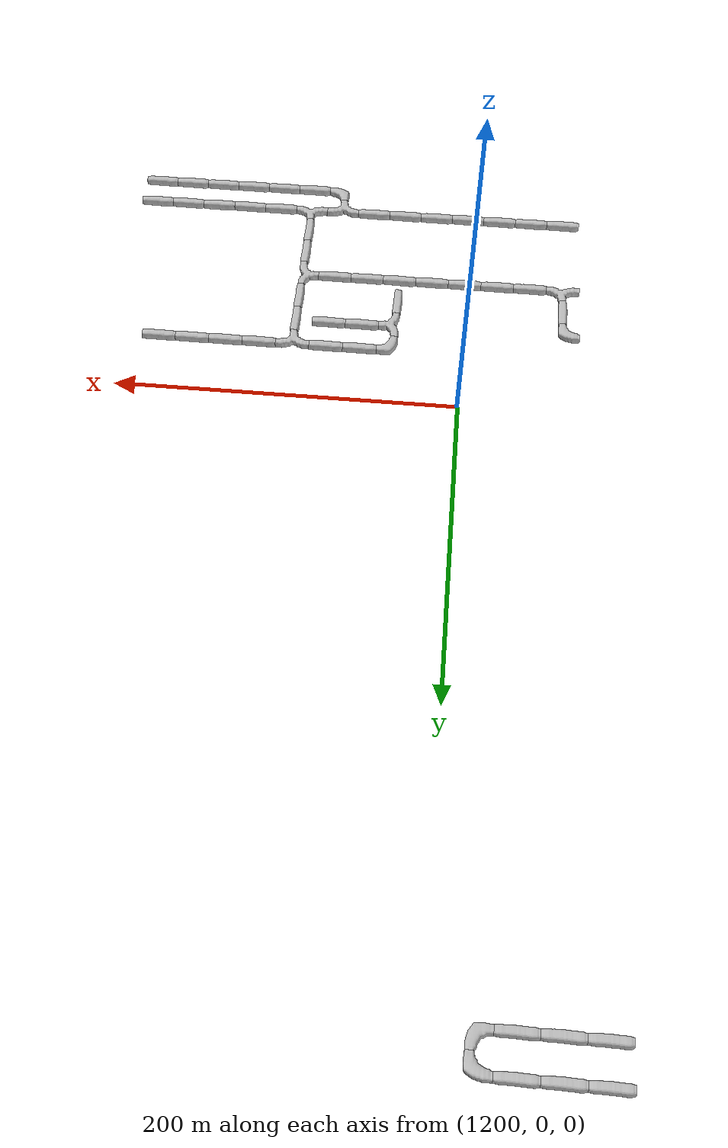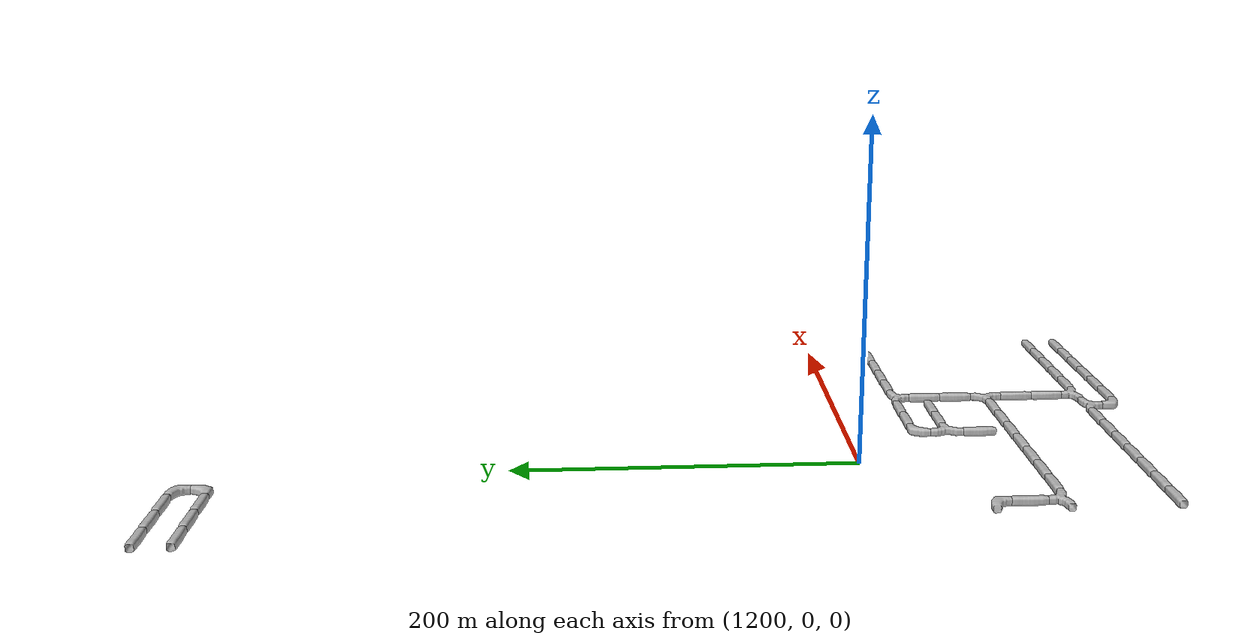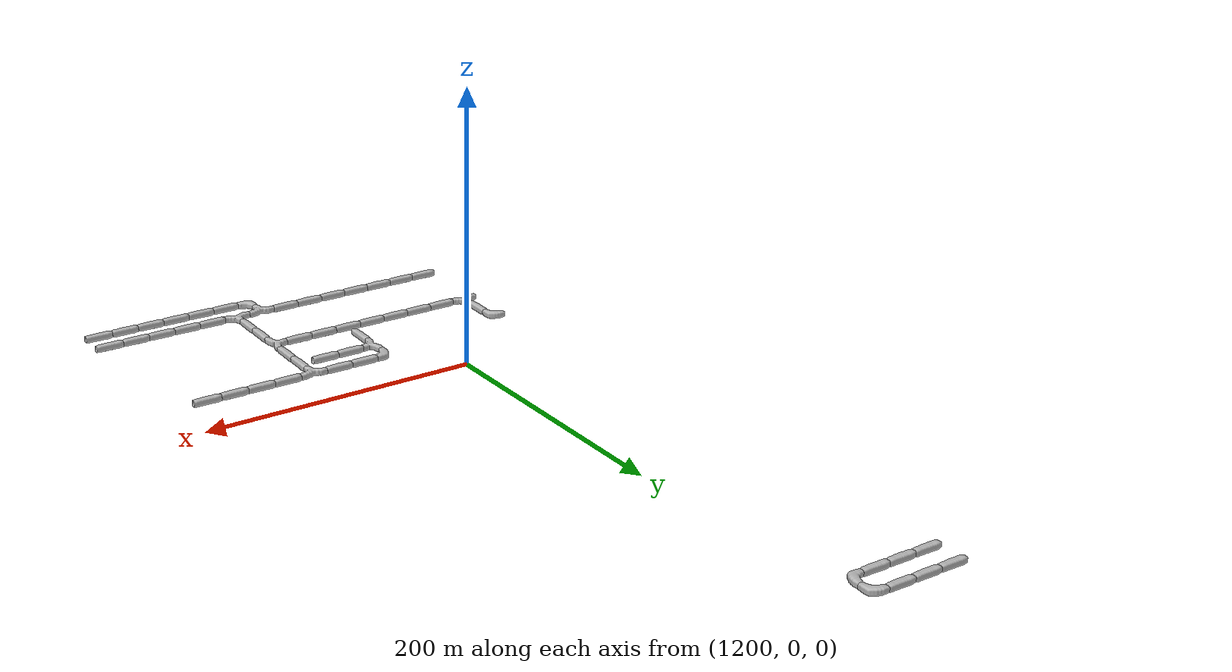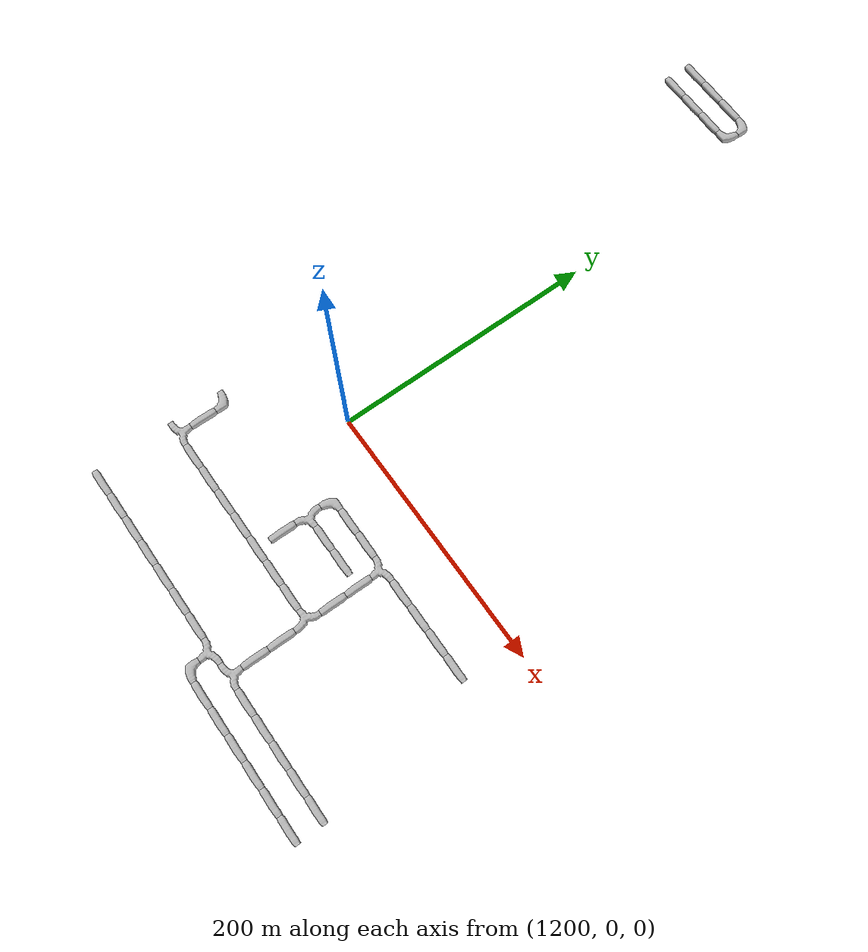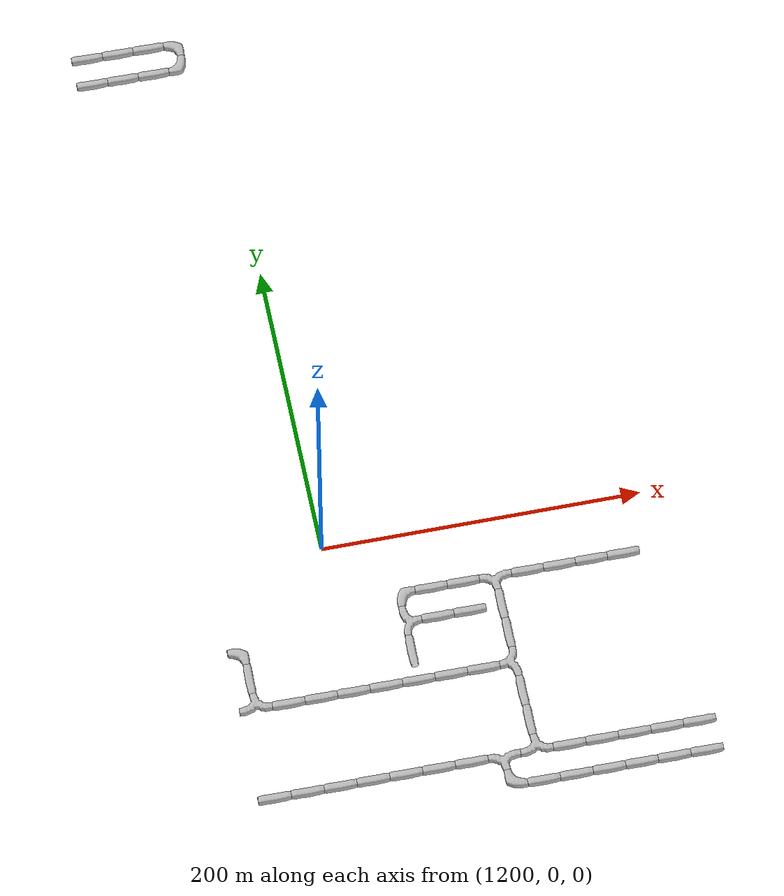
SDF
<sdf version="1.6">
 <world name="cave_32000_8">
  <include>
   <static>true</static>
   <name>cave_56_19</name>
   <pose>1120 380 0 0 0 1.5707963267948966</pose>
   <uri>model://cave_straight_20m</uri>
  </include>
  <include>
   <static>true</static>
   <name>cave_57_19</name>
   <pose>1140 380 0 0 0 1.5707963267948966</pose>
   <uri>model://cave_straight_20m</uri>
  </include>
  <include>
   <static>true</static>
   <name>cave_58_19</name>
   <pose>1160 380 0 0 0 1.5707963267948966</pose>
   <uri>model://cave_straight_20m</uri>
  </include>
  <include>
   <static>true</static>
   <name>cave_59_19</name>
   <pose>1180 380 0 0 0 3.141592653589793</pose>
   <uri>model://cave_L_20m</uri>
  </include>
  <include>
   <static>true</static>
   <name>cave_59_18</name>
   <pose>1180 360 0 0 0 1.5707963267948966</pose>
   <uri>model://cave_L_20m</uri>
  </include>
  <include>
   <static>true</static>
   <name>cave_58_18</name>
   <pose>1160 360 0 0 0 1.5707963267948966</pose>
   <uri>model://cave_straight_20m</uri>
  </include>
  <include>
   <static>true</static>
   <name>cave_57_18</name>
   <pose>1140 360 0 0 0 1.5707963267948966</pose>
   <uri>model://cave_straight_20m</uri>
  </include>
  <include>
   <static>true</static>
   <name>cave_56_18</name>
   <pose>1120 360 0 0 0 1.5707963267948966</pose>
   <uri>model://cave_straight_20m</uri>
  </include>
  <include>
   <static>true</static>
   <name>cave_57_-8</name>
   <pose>1140 -160 0 0 0 1.5707963267948966</pose>
   <uri>model://cave_straight_20m</uri>
  </include>
  <include>
   <static>true</static>
   <name>cave_58_-8</name>
   <pose>1160 -160 0 0 0 1.5707963267948966</pose>
   <uri>model://cave_straight_20m</uri>
  </include>
  <include>
   <static>true</static>
   <name>cave_59_-8</name>
   <pose>1180 -160 0 0 0 1.5707963267948966</pose>
   <uri>model://cave_straight_20m</uri>
  </include>
  <include>
   <static>true</static>
   <name>cave_60_-8</name>
   <pose>1200 -160 0 0 0 1.5707963267948966</pose>
   <uri>model://cave_straight_20m</uri>
  </include>
  <include>
   <static>true</static>
   <name>cave_61_-8</name>
   <pose>1220 -160 0 0 0 1.5707963267948966</pose>
   <uri>model://cave_straight_20m</uri>
  </include>
  <include>
   <static>true</static>
   <name>cave_62_-8</name>
   <pose>1240 -160 0 0 0 1.5707963267948966</pose>
   <uri>model://cave_straight_20m</uri>
  </include>
  <include>
   <static>true</static>
   <name>cave_63_-8</name>
   <pose>1260 -160 0 0 0 1.5707963267948966</pose>
   <uri>model://cave_straight_20m</uri>
  </include>
  <include>
   <static>true</static>
   <name>cave_64_-8</name>
   <pose>1280 -160 0 0 0 3.141592653589793</pose>
   <uri>model://cave_3way_20m</uri>
  </include>
  <include>
   <static>true</static>
   <name>cave_65_-8</name>
   <pose>1300 -160 0 0 0 0.0</pose>
   <uri>model://cave_3way_20m</uri>
  </include>
  <include>
   <static>true</static>
   <name>cave_66_-8</name>
   <pose>1320 -160 0 0 0 1.5707963267948966</pose>
   <uri>model://cave_straight_20m</uri>
  </include>
  <include>
   <static>true</static>
   <name>cave_67_-8</name>
   <pose>1340 -160 0 0 0 1.5707963267948966</pose>
   <uri>model://cave_straight_20m</uri>
  </include>
  <include>
   <static>true</static>
   <name>cave_68_-8</name>
   <pose>1360 -160 0 0 0 1.5707963267948966</pose>
   <uri>model://cave_straight_20m</uri>
  </include>
  <include>
   <static>true</static>
   <name>cave_69_-8</name>
   <pose>1380 -160 0 0 0 1.5707963267948966</pose>
   <uri>model://cave_straight_20m</uri>
  </include>
  <include>
   <static>true</static>
   <name>cave_70_-8</name>
   <pose>1400 -160 0 0 0 1.5707963267948966</pose>
   <uri>model://cave_straight_20m</uri>
  </include>
  <include>
   <static>true</static>
   <name>cave_65_-7</name>
   <pose>1300 -140 0 0 0 0.0</pose>
   <uri>model://cave_straight_20m</uri>
  </include>
  <include>
   <static>true</static>
   <name>cave_65_-6</name>
   <pose>1300 -120 0 0 0 0.0</pose>
   <uri>model://cave_straight_20m</uri>
  </include>
  <include>
   <static>true</static>
   <name>cave_65_-5</name>
   <pose>1300 -100 0 0 0 1.5707963267948966</pose>
   <uri>model://cave_3way_20m</uri>
  </include>
  <include>
   <static>true</static>
   <name>cave_64_-5</name>
   <pose>1280 -100 0 0 0 1.5707963267948966</pose>
   <uri>model://cave_straight_20m</uri>
  </include>
  <include>
   <static>true</static>
   <name>cave_63_-5</name>
   <pose>1260 -100 0 0 0 1.5707963267948966</pose>
   <uri>model://cave_straight_20m</uri>
  </include>
  <include>
   <static>true</static>
   <name>cave_62_-5</name>
   <pose>1240 -100 0 0 0 1.5707963267948966</pose>
   <uri>model://cave_straight_20m</uri>
  </include>
  <include>
   <static>true</static>
   <name>cave_61_-5</name>
   <pose>1220 -100 0 0 0 1.5707963267948966</pose>
   <uri>model://cave_straight_20m</uri>
  </include>
  <include>
   <static>true</static>
   <name>cave_60_-5</name>
   <pose>1200 -100 0 0 0 1.5707963267948966</pose>
   <uri>model://cave_straight_20m</uri>
  </include>
  <include>
   <static>true</static>
   <name>cave_59_-5</name>
   <pose>1180 -100 0 0 0 1.5707963267948966</pose>
   <uri>model://cave_straight_20m</uri>
  </include>
  <include>
   <static>true</static>
   <name>cave_58_-5</name>
   <pose>1160 -100 0 0 0 1.5707963267948966</pose>
   <uri>model://cave_straight_20m</uri>
  </include>
  <include>
   <static>true</static>
   <name>cave_57_-5</name>
   <pose>1140 -100 0 0 0 0.0</pose>
   <uri>model://cave_3way_20m</uri>
  </include>
  <include>
   <static>true</static>
   <name>cave_57_-4</name>
   <pose>1140 -80 0 0 0 0.0</pose>
   <uri>model://cave_straight_20m</uri>
  </include>
  <include>
   <static>true</static>
   <name>cave_57_-3</name>
   <pose>1140 -60 0 0 0 3.141592653589793</pose>
   <uri>model://cave_L_20m</uri>
  </include>
  <include>
   <static>true</static>
   <name>cave_65_-4</name>
   <pose>1300 -80 0 0 0 0.0</pose>
   <uri>model://cave_straight_20m</uri>
  </include>
  <include>
   <static>true</static>
   <name>cave_65_-3</name>
   <pose>1300 -60 0 0 0 0.0</pose>
   <uri>model://cave_straight_20m</uri>
  </include>
  <include>
   <static>true</static>
   <name>cave_65_-2</name>
   <pose>1300 -40 0 0 0 3.141592653589793</pose>
   <uri>model://cave_3way_20m</uri>
  </include>
  <include>
   <static>true</static>
   <name>cave_66_-2</name>
   <pose>1320 -40 0 0 0 1.5707963267948966</pose>
   <uri>model://cave_straight_20m</uri>
  </include>
  <include>
   <static>true</static>
   <name>cave_67_-2</name>
   <pose>1340 -40 0 0 0 1.5707963267948966</pose>
   <uri>model://cave_straight_20m</uri>
  </include>
  <include>
   <static>true</static>
   <name>cave_68_-2</name>
   <pose>1360 -40 0 0 0 1.5707963267948966</pose>
   <uri>model://cave_straight_20m</uri>
  </include>
  <include>
   <static>true</static>
   <name>cave_69_-2</name>
   <pose>1380 -40 0 0 0 1.5707963267948966</pose>
   <uri>model://cave_straight_20m</uri>
  </include>
  <include>
   <static>true</static>
   <name>cave_64_-2</name>
   <pose>1280 -40 0 0 0 1.5707963267948966</pose>
   <uri>model://cave_straight_20m</uri>
  </include>
  <include>
   <static>true</static>
   <name>cave_63_-2</name>
   <pose>1260 -40 0 0 0 1.5707963267948966</pose>
   <uri>model://cave_straight_20m</uri>
  </include>
  <include>
   <static>true</static>
   <name>cave_62_-2</name>
   <pose>1240 -40 0 0 0 -1.5707963267948966</pose>
   <uri>model://cave_L_20m</uri>
  </include>
  <include>
   <static>true</static>
   <name>cave_62_-3</name>
   <pose>1240 -60 0 0 0 -1.5707963267948966</pose>
   <uri>model://cave_3way_20m</uri>
  </include>
  <include>
   <static>true</static>
   <name>cave_63_-3</name>
   <pose>1260 -60 0 0 0 1.5707963267948966</pose>
   <uri>model://cave_straight_20m</uri>
  </include>
  <include>
   <static>true</static>
   <name>cave_64_-3</name>
   <pose>1280 -60 0 0 0 1.5707963267948966</pose>
   <uri>model://cave_straight_20m</uri>
  </include>
  <include>
   <static>true</static>
   <name>cave_62_-4</name>
   <pose>1240 -80 0 0 0 0.0</pose>
   <uri>model://cave_straight_20m</uri>
  </include>
  <include>
   <static>true</static>
   <name>cave_64_-9</name>
   <pose>1280 -180 0 0 0 0.0</pose>
   <uri>model://cave_L_20m</uri>
  </include>
  <include>
   <static>true</static>
   <name>cave_65_-9</name>
   <pose>1300 -180 0 0 0 1.5707963267948966</pose>
   <uri>model://cave_straight_20m</uri>
  </include>
  <include>
   <static>true</static>
   <name>cave_66_-9</name>
   <pose>1320 -180 0 0 0 1.5707963267948966</pose>
   <uri>model://cave_straight_20m</uri>
  </include>
  <include>
   <static>true</static>
   <name>cave_67_-9</name>
   <pose>1340 -180 0 0 0 1.5707963267948966</pose>
   <uri>model://cave_straight_20m</uri>
  </include>
  <include>
   <static>true</static>
   <name>cave_68_-9</name>
   <pose>1360 -180 0 0 0 1.5707963267948966</pose>
   <uri>model://cave_straight_20m</uri>
  </include>
  <include>
   <static>true</static>
   <name>cave_69_-9</name>
   <pose>1380 -180 0 0 0 1.5707963267948966</pose>
   <uri>model://cave_straight_20m</uri>
  </include>
  <include>
   <static>true</static>
   <name>cave_70_-9</name>
   <pose>1400 -180 0 0 0 1.5707963267948966</pose>
   <uri>model://cave_straight_20m</uri>
  </include>
 </world>
</sdf>
